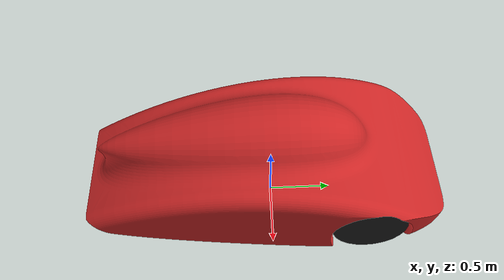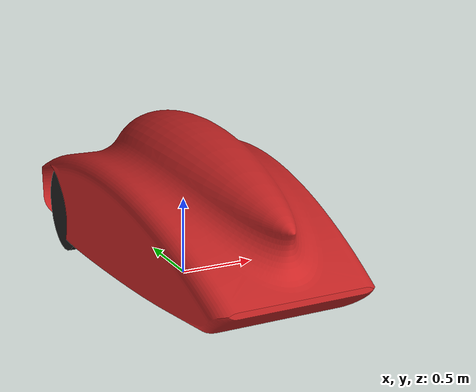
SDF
<?xml version="1.0"?>
<sdf version='1.5'>
  <model name='pars'>
    <!-- Pars body -->
    <link name='body'>
      <pose>0 0 0 0 0 0</pose>
      <inertial>
        <pose>0 0 0.6 0 0 0</pose>
        <mass>92.0</mass>
        <inertia>
          <ixx>0.7</ixx>
          <ixy>0</ixy>
          <ixz>0</ixz>
          <iyy>0.2</iyy>
          <iyz>0</iyz>
          <izz>0.8</izz>
        </inertia>
      </inertial>
      <collision name='base_link_inertia_collision'>
        <pose>0 0 0.13 0 0 0</pose>
        <geometry>
          <mesh>
            <scale>0.16 0.16 0.16</scale>
            <uri>model://pars/meshes/pars.stl</uri>
          </mesh>
        </geometry>
        <surface>
          <contact>
            <ode>
              <min_depth>0.001</min_depth>
              <max_vel>0</max_vel>
            </ode>
          </contact>
          <friction>
            <ode/>
          </friction>
        </surface>
      </collision>
      <visual name='base_link_inertia_visual'>
        <pose>0 0 0.13 0 0 0</pose>
        <geometry>
          <mesh>
            <scale>0.16 0.16 0.16</scale>
            <uri>model://pars/meshes/pars.stl</uri>
          </mesh>
        </geometry>
        <material>
          <script>
            <name>Gazebo/Red</name>
            <uri>file://media/materials/scripts/gazebo.material</uri>
          </script>
        </material>
      </visual>
      <gravity>1</gravity>
      <velocity_decay/>
      <self_collide>0</self_collide>
    </link>

    <link name="imu">
      <pose>0.0 1.15 0.30 0 0 0</pose>
      <inertial>
        <pose>0 0 0 0 0 0</pose>
        <mass>0.015</mass>
        <inertia>
          <ixx>1e-05</ixx>
          <ixy>0</ixy>
          <ixz>0</ixz>
          <iyy>1e-05</iyy>
          <iyz>0</iyz>
          <izz>1e-05</izz>
        </inertia>
      </inertial>
    </link>
    <joint name='imu_joint' type='revolute'>
      <child>imu</child>
      <parent>body</parent>
      <axis>
        <xyz>1 0 0</xyz>
        <limit>
          <lower>0</lower>
          <upper>0</upper>
          <effort>0</effort>
          <velocity>0</velocity>
        </limit>
        <use_parent_model_frame>1</use_parent_model_frame>
      </axis>
    </joint>

    <link name="front_left_wheel">
        <pose>-0.55 0.74 0.30 0 1.5707 0</pose>
        <inertial>
          <pose>0 0 0 0 0 0</pose>
          <mass>1.0</mass>
          <inertia>
            <ixx>0.03</ixx>
            <ixy>0.00</ixy>
            <ixz>0.00</ixz>
            <iyy>0.03</iyy>
            <iyz>0.00</iyz>
            <izz>0.058</izz>
          </inertia>
        </inertial>
        <collision name="collision">
          <geometry>
            <cylinder>
              <radius>.2932</radius>
              <length>.05</length>
            </cylinder>
          </geometry>
        </collision>
        <visual name="visual">
          <geometry>
            <cylinder>
              <radius>.2932</radius>
              <length>.05</length>
            </cylinder>
          </geometry>
          <material>
            <script>
              <name>Gazebo/Black</name>
              <uri>file://media/materials/scripts/gazebo.material</uri>
            </script>
          </material>
        </visual>
    </link>
    <link name="front_right_wheel">
        <pose>0.55 0.74 0.30 0 1.5707 0</pose>
        <inertial>
          <pose>0 0 0 0 0 0</pose>
          <mass>1.0</mass>
          <inertia>
            <ixx>0.03</ixx>
            <ixy>0.00</ixy>
            <ixz>0.00</ixz>
            <iyy>0.03</iyy>
            <iyz>0.00</iyz>
            <izz>0.058</izz>
          </inertia>
        </inertial>
        <collision name="collision">
          <geometry>
            <cylinder>
              <radius>.2932</radius>
              <length>.05</length>
            </cylinder>
          </geometry>
        </collision>
        <visual name="visual">
          <geometry>
            <cylinder>
              <radius>.2932</radius>
              <length>.05</length>
            </cylinder>
          </geometry>
          <material>
            <script>
              <name>Gazebo/Black</name>
              <uri>file://media/materials/scripts/gazebo.material</uri>
            </script>
          </material>
        </visual>
    </link>
    <link name="rear_left_wheel">
        <pose>-0.30 -0.70 0.30 0 1.5707 0</pose>
        <inertial>
          <pose>0 0 0 0 0 0</pose>
          <mass>2.0</mass>
          <inertia>
            <ixx>0.03</ixx>
            <ixy>0.00</ixy>
            <ixz>0.00</ixz>
            <iyy>0.03</iyy>
            <iyz>0.00</iyz>
            <izz>0.058</izz>
          </inertia>
        </inertial>
        <collision name="collision">
          <geometry>
            <cylinder>
              <radius>.2932</radius>
              <length>.05</length>
            </cylinder>
          </geometry>
        </collision>
        <visual name="visual">
          <geometry>
            <cylinder>
              <radius>.2932</radius>
              <length>.05</length>
            </cylinder>
          </geometry>
          <material>
            <script>
              <name>Gazebo/Black</name>
              <uri>file://media/materials/scripts/gazebo.material</uri>
            </script>
          </material>
        </visual>
    </link>
    <link name="rear_right_wheel">
        <pose>0.30 -0.70 0.30 0 1.5707 0</pose>
        <inertial>
          <pose>0 0 0 0 0 0</pose>
          <mass>2.0</mass>
          <inertia>
            <ixx>0.03</ixx>
            <ixy>0.00</ixy>
            <ixz>0.00</ixz>
            <iyy>0.03</iyy>
            <iyz>0.00</iyz>
            <izz>0.058</izz>
          </inertia>
        </inertial>
        <collision name="collision">
          <geometry>
            <cylinder>
              <radius>.2932</radius>
              <length>.05</length>
            </cylinder>
          </geometry>
        </collision>
        <visual name="visual">
          <geometry>
            <cylinder>
              <radius>.2932</radius>
              <length>.05</length>
            </cylinder>
          </geometry>
          <material>
            <script>
              <name>Gazebo/Black</name>
              <uri>file://media/materials/scripts/gazebo.material</uri>
            </script>
          </material>
        </visual>
    </link>

    <link name="FLwheel_steer">
      <pose>-0.55 0.74 0.30 0 1.5707 0</pose>
      <inertial>
          <pose>0 0 0 0 0 0</pose>
          <mass>1.0</mass>
          <inertia>
            <ixx>0.03</ixx>
            <ixy>0.00</ixy>
            <ixz>0.00</ixz>
            <iyy>0.03</iyy>
            <iyz>0.00</iyz>
            <izz>0.058</izz>
          </inertia>
        </inertial>
    </link>
    <link name="FRwheel_steer">
      <pose>0.55 0.74 0.30 0 1.5707 0</pose>
      <inertial>
          <pose>0 0 0 0 0 0</pose>
          <mass>1.0</mass>
          <inertia>
            <ixx>0.03</ixx>
            <ixy>0.00</ixy>
            <ixz>0.00</ixz>
            <iyy>0.03</iyy>
            <iyz>0.00</iyz>
            <izz>0.058</izz>
          </inertia>
        </inertial>
    </link>

    <joint name="jFRsteer" type="revolute">
      <parent>body</parent>
      <child>FRwheel_steer</child>
      <axis>
        <xyz>1 0 0</xyz>
        <limit>
          <upper>0.8</upper>
          <lower>-0.8</lower>
        </limit>
        <dynamics>
          <friction>2.0</friction>
        </dynamics>
      </axis>
    </joint>
    <joint name="jFLsteer" type="revolute">
      <parent>body</parent>
      <child>FLwheel_steer</child>
      <axis>
        <xyz>1 0 0</xyz>
        <limit>
          <upper>0.8</upper>
          <lower>-0.8</lower>
        </limit>
        <dynamics>
          <friction>2.0</friction>
        </dynamics>
      </axis>
    </joint>

    <joint name="jFR" type="revolute">
      <parent>FRwheel_steer</parent>
      <child>front_right_wheel</child>
      <axis>
        <xyz>0 0 1</xyz>
      </axis>
    </joint>
    <joint name="jFL" type="revolute">
      <parent>FLwheel_steer</parent>
      <child>front_left_wheel</child>
      <axis>
        <xyz>0 0 1</xyz>
      </axis>
    </joint>

    <joint name="jRR" type="revolute">
        <parent>body</parent>
        <child>rear_right_wheel</child>
        <axis>
            <xyz>0 0 1</xyz>
        </axis>
    </joint>
    <joint name="jRL" type="revolute">
        <parent>body</parent>
        <child>rear_left_wheel</child>
        <axis>
            <xyz>0 0 1</xyz>
        </axis>
    </joint>

    <plugin name="gazebo_ros_control" filename="libgazebo_ros_control.so">
      <robotNamespace>/pars</robotNamespace>
      <robotSimType>gazebo_ros_control/DefaultRobotHWSim</robotSimType>
    </plugin>
    <plugin name='rosbag' filename='libgazebo_multirotor_base_plugin.so'>
      <robotNamespace></robotNamespace>
      <linkName>body</linkName>
      <rotorVelocitySlowdownSim>10</rotorVelocitySlowdownSim>
    </plugin>
    <plugin name='gazebo_imu_plugin' filename='libgazebo_imu_plugin.so'>
      <robotNamespace></robotNamespace>
      <linkName>imu</linkName>
      <imuTopic>/imu</imuTopic>
      <gyroscopeNoiseDensity>0.0003394</gyroscopeNoiseDensity>
      <gyroscopeRandomWalk>3.8785e-05</gyroscopeRandomWalk>
      <gyroscopeBiasCorrelationTime>1000.0</gyroscopeBiasCorrelationTime>
      <gyroscopeTurnOnBiasSigma>0.0087</gyroscopeTurnOnBiasSigma>
      <accelerometerNoiseDensity>0.004</accelerometerNoiseDensity>
      <accelerometerRandomWalk>0.006</accelerometerRandomWalk>
      <accelerometerBiasCorrelationTime>300.0</accelerometerBiasCorrelationTime>
      <accelerometerTurnOnBiasSigma>0.196</accelerometerTurnOnBiasSigma>
    </plugin>
  </model>
</sdf>
